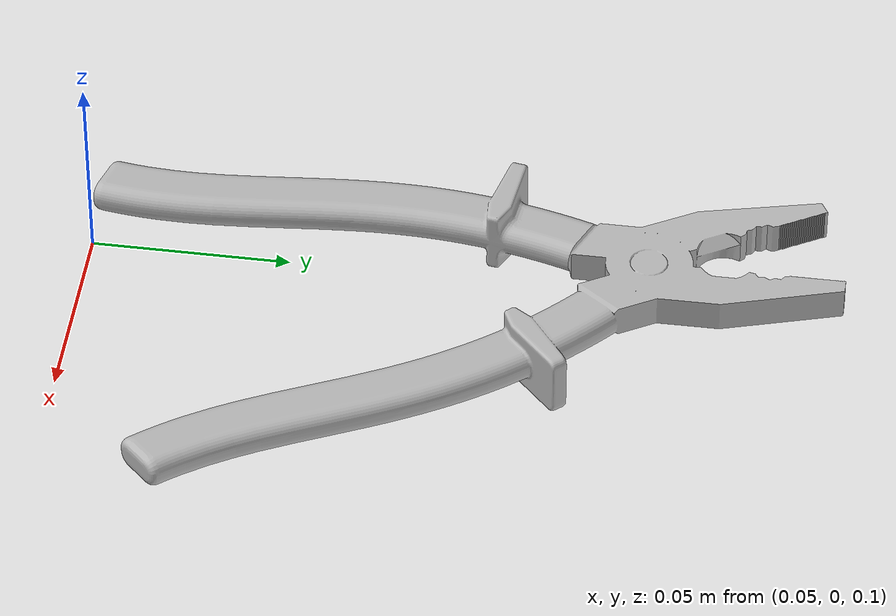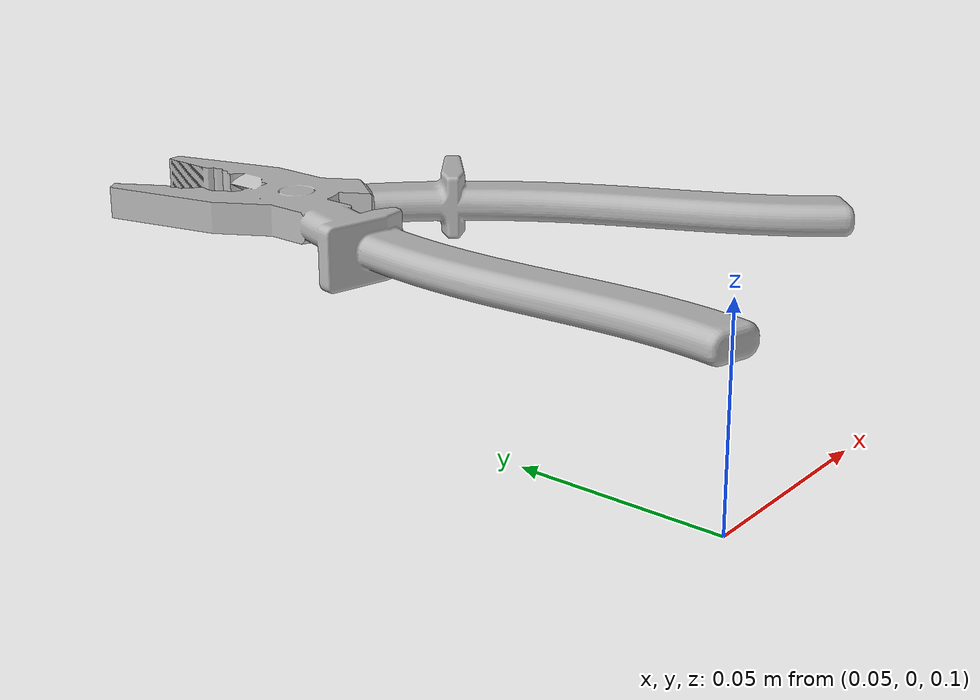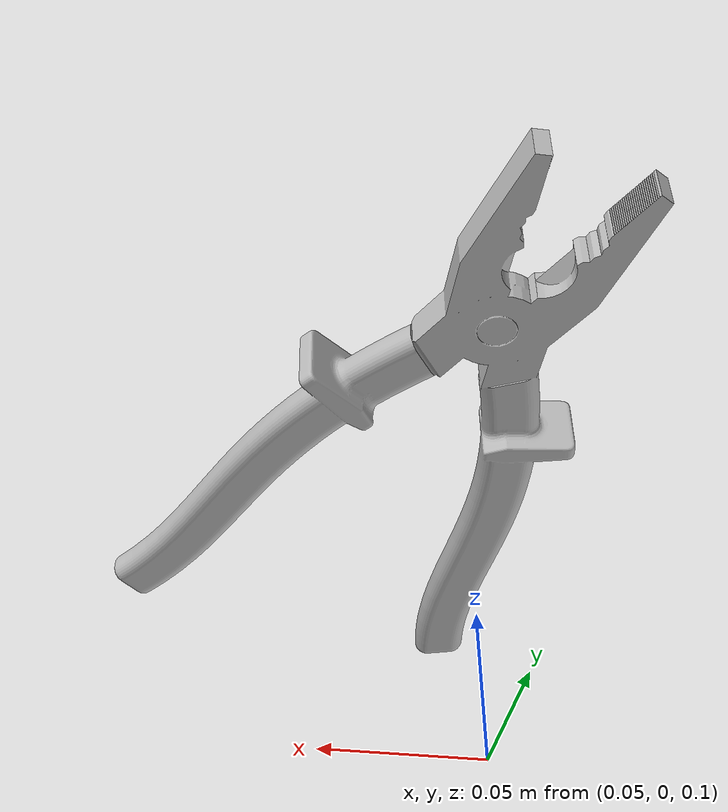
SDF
<?xml version="1.0" ?>
<sdf version="1.5">
  <model name="plier-16">
    <static>true</static>
    <link name="link">
      <collision name="collision">
        <geometry>
          <mesh>
            <uri>model://plier-16/meshes/plier-16.stl</uri>
            <scale>0.001 0.001 0.001</scale>
          </mesh>
        </geometry>
      </collision>
      <visual name="visual">
        <geometry>
          <mesh>
            <uri>model://plier-16/meshes/plier-16.stl</uri>
            <scale>0.001 0.001 0.001</scale>
          </mesh>
        </geometry>
      </visual>
    </link>
  </model>
</sdf>
